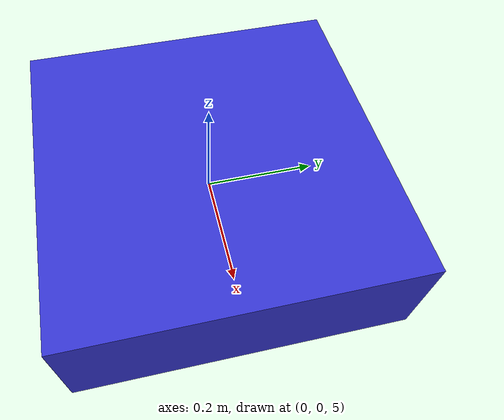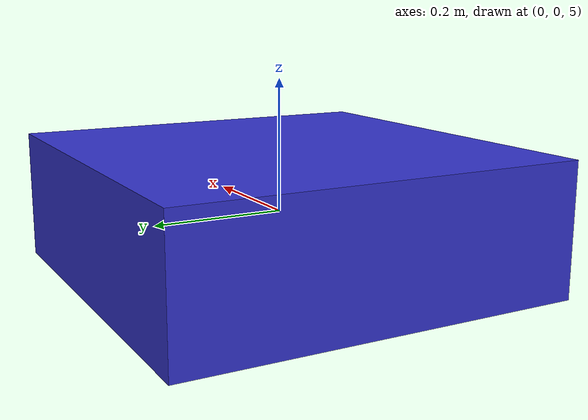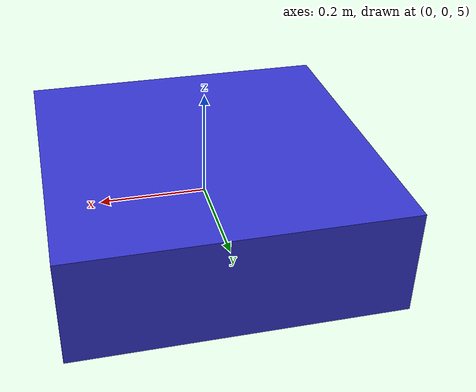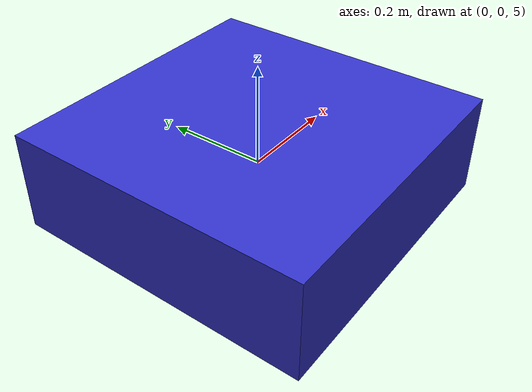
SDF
<?xml version="1.0"?>
<sdf version="1.9">
  <model name="uav_platform">
    <static>false</static>
    <pose>0 0 5 0 0 0</pose>
    <gravity>false</gravity>

    <link name="base_link">
      <gravity>false</gravity>
      <inertial>
        <mass>1.0</mass>
        <inertia>
          <ixx>0.02</ixx>
          <iyy>0.02</iyy>
          <izz>0.02</izz>
          <ixy>0.0</ixy>
          <ixz>0.0</ixz>
          <iyz>0.0</iyz>
        </inertia>
      </inertial>

      <collision name="base_collision">
        <geometry>
          <box>
            <size>0.6 0.6 0.2</size>
          </box>
        </geometry>
      </collision>

      <visual name="base_visual">
        <geometry>
          <box>
            <size>0.6 0.6 0.2</size>
          </box>
        </geometry>
        <material>
          <ambient>0.2 0.2 0.8 1</ambient>
          <diffuse>0.2 0.2 0.8 1</diffuse>
        </material>
      </visual>
    </link>

    <link name="camera_link">
      <gravity>false</gravity>
      <pose>0 0 -0.2 0 -1.5708 0</pose>
      <inertial>
        <mass>0.05</mass>
        <inertia>
          <ixx>0.0001</ixx>
          <iyy>0.0001</iyy>
          <izz>0.0001</izz>
          <ixy>0.0</ixy>
          <ixz>0.0</ixz>
          <iyz>0.0</iyz>
        </inertia>
      </inertial>

      <sensor name="down_camera" type="camera">
        <always_on>true</always_on>
        <update_rate>15</update_rate>
        <camera>
          <horizontal_fov>1.047</horizontal_fov>
          <image>
            <width>640</width>
            <height>480</height>
            <format>R8G8B8</format>
          </image>
          <clip>
            <near>0.1</near>
            <far>200</far>
          </clip>
        </camera>
        <topic>/uav/down_camera/image</topic>
        <camera_info_topic>/uav/down_camera/camera_info</camera_info_topic>
      </sensor>
    </link>

    <plugin filename="gz-sim-pose-publisher-system" name="gz::sim::systems::PosePublisher">
      <publish_link_pose>true</publish_link_pose>
      <publish_sensor_pose>true</publish_sensor_pose>
      <publish_nested_model_pose>true</publish_nested_model_pose>
      <use_pose_vector_msg>true</use_pose_vector_msg>
      <static_publisher>false</static_publisher>
      <static_update_frequency>1</static_update_frequency>
    </plugin>

    <joint name="camera_fixed_joint" type="fixed">
      <parent>base_link</parent>
      <child>camera_link</child>
    </joint>
  </model>
</sdf>
